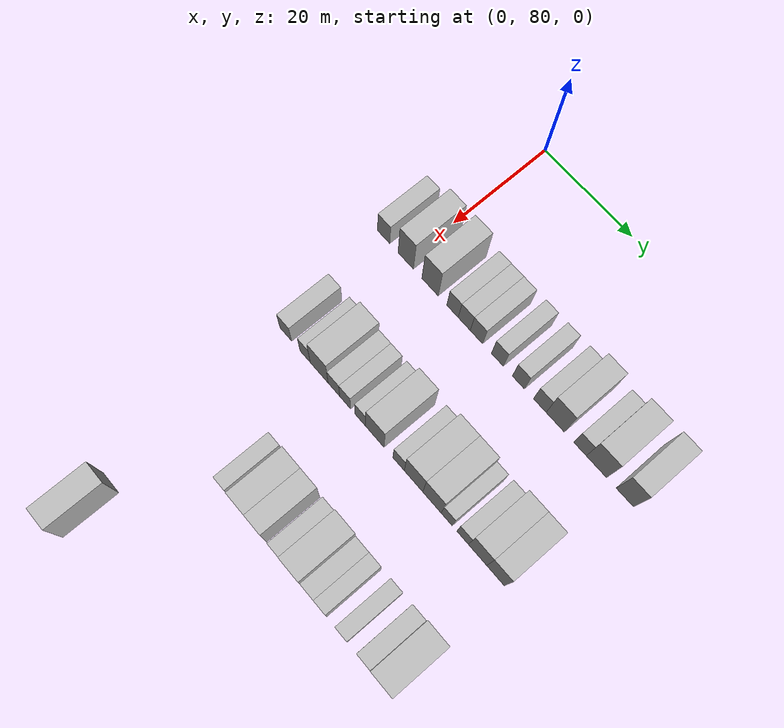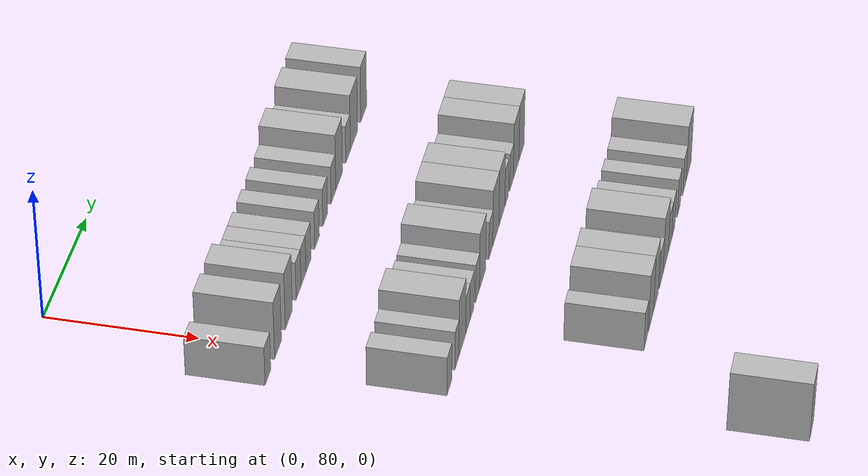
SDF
<sdf version="1.6">
 <world name="default">
  <model name="building_114">
   <static>1</static>
   <pose>25.0000 74.6300 0 0.000000 0.000000 0.000000</pose>
   <link name="link">
    <pose>0 0 3.00 0 0 0</pose>
    <collision name="collision"><geometry><box><size>10.0000 2.9692 6.0000</size></box></geometry></collision>
    <visual name="visual">
     <cast_shadows>0</cast_shadows>
     <geometry><box><size>10.0000 2.9692 6.0000</size></box></geometry>
     <material>
      <script>
       <uri>model://HANNAS_wall/materials/scripts</uri>
       <uri>model://HANNAS_wall/materials/textures</uri>
       <name>vrc/HANNAS_wall</name>
      </script>
     </material>
    </visual>
   </link>
  </model>
  <model name="building_115">
   <static>1</static>
   <pose>25.0000 79.9441 0 0.000000 0.000000 0.000000</pose>
   <link name="link">
    <pose>0 0 4.50 0 0 0</pose>
    <collision name="collision"><geometry><box><size>10.0000 3.6590 9.0000</size></box></geometry></collision>
    <visual name="visual">
     <cast_shadows>0</cast_shadows>
     <geometry><box><size>10.0000 3.6590 9.0000</size></box></geometry>
     <material>
      <script>
       <uri>model://HANNAS_wall/materials/scripts</uri>
       <uri>model://HANNAS_wall/materials/textures</uri>
       <name>vrc/HANNAS_wall</name>
      </script>
     </material>
    </visual>
   </link>
  </model>
  <model name="building_116">
   <static>1</static>
   <pose>25.0000 85.7078 0 0.000000 0.000000 0.000000</pose>
   <link name="link">
    <pose>0 0 4.50 0 0 0</pose>
    <collision name="collision"><geometry><box><size>10.0000 3.8683 9.0000</size></box></geometry></collision>
    <visual name="visual">
     <cast_shadows>0</cast_shadows>
     <geometry><box><size>10.0000 3.8683 9.0000</size></box></geometry>
     <material>
      <script>
       <uri>model://HANNAS_wall/materials/scripts</uri>
       <uri>model://HANNAS_wall/materials/textures</uri>
       <name>vrc/HANNAS_wall</name>
      </script>
     </material>
    </visual>
   </link>
  </model>
  <model name="building_117">
   <static>1</static>
   <pose>25.0000 90.9737 0 0.000000 0.000000 0.000000</pose>
   <link name="link">
    <pose>0 0 3.00 0 0 0</pose>
    <collision name="collision"><geometry><box><size>10.0000 2.6635 6.0000</size></box></geometry></collision>
    <visual name="visual">
     <cast_shadows>0</cast_shadows>
     <geometry><box><size>10.0000 2.6635 6.0000</size></box></geometry>
     <material>
      <script>
       <uri>model://HANNAS_wall/materials/scripts</uri>
       <uri>model://HANNAS_wall/materials/textures</uri>
       <name>vrc/HANNAS_wall</name>
      </script>
     </material>
    </visual>
   </link>
  </model>
  <model name="building_118">
   <static>1</static>
   <pose>25.0000 93.6869 0 0.000000 0.000000 0.000000</pose>
   <link name="link">
    <pose>0 0 3.00 0 0 0</pose>
    <collision name="collision"><geometry><box><size>10.0000 2.7629 6.0000</size></box></geometry></collision>
    <visual name="visual">
     <cast_shadows>0</cast_shadows>
     <geometry><box><size>10.0000 2.7629 6.0000</size></box></geometry>
     <material>
      <script>
       <uri>model://HANNAS_wall/materials/scripts</uri>
       <uri>model://HANNAS_wall/materials/textures</uri>
       <name>vrc/HANNAS_wall</name>
      </script>
     </material>
    </visual>
   </link>
  </model>
  <model name="building_119">
   <static>1</static>
   <pose>25.0000 96.4809 0 0.000000 0.000000 0.000000</pose>
   <link name="link">
    <pose>0 0 3.00 0 0 0</pose>
    <collision name="collision"><geometry><box><size>10.0000 2.8250 6.0000</size></box></geometry></collision>
    <visual name="visual">
     <cast_shadows>0</cast_shadows>
     <geometry><box><size>10.0000 2.8250 6.0000</size></box></geometry>
     <material>
      <script>
       <uri>model://HANNAS_wall/materials/scripts</uri>
       <uri>model://HANNAS_wall/materials/textures</uri>
       <name>vrc/HANNAS_wall</name>
      </script>
     </material>
    </visual>
   </link>
  </model>
  <model name="building_120">
   <static>1</static>
   <pose>25.0000 101.2464 0 0.000000 0.000000 0.000000</pose>
   <link name="link">
    <pose>0 0 3.00 0 0 0</pose>
    <collision name="collision"><geometry><box><size>10.0000 2.7061 6.0000</size></box></geometry></collision>
    <visual name="visual">
     <cast_shadows>0</cast_shadows>
     <geometry><box><size>10.0000 2.7061 6.0000</size></box></geometry>
     <material>
      <script>
       <uri>model://HANNAS_wall/materials/scripts</uri>
       <uri>model://HANNAS_wall/materials/textures</uri>
       <name>vrc/HANNAS_wall</name>
      </script>
     </material>
    </visual>
   </link>
  </model>
  <model name="building_121">
   <static>1</static>
   <pose>25.0000 105.9428 0 0.000000 0.000000 0.000000</pose>
   <link name="link">
    <pose>0 0 3.00 0 0 0</pose>
    <collision name="collision"><geometry><box><size>10.0000 2.6867 6.0000</size></box></geometry></collision>
    <visual name="visual">
     <cast_shadows>0</cast_shadows>
     <geometry><box><size>10.0000 2.6867 6.0000</size></box></geometry>
     <material>
      <script>
       <uri>model://HANNAS_wall/materials/scripts</uri>
       <uri>model://HANNAS_wall/materials/textures</uri>
       <name>vrc/HANNAS_wall</name>
      </script>
     </material>
    </visual>
   </link>
  </model>
  <model name="building_122">
   <static>1</static>
   <pose>25.0000 110.6799 0 0.000000 0.000000 0.000000</pose>
   <link name="link">
    <pose>0 0 3.00 0 0 0</pose>
    <collision name="collision"><geometry><box><size>10.0000 2.7877 6.0000</size></box></geometry></collision>
    <visual name="visual">
     <cast_shadows>0</cast_shadows>
     <geometry><box><size>10.0000 2.7877 6.0000</size></box></geometry>
     <material>
      <script>
       <uri>model://HANNAS_wall/materials/scripts</uri>
       <uri>model://HANNAS_wall/materials/textures</uri>
       <name>vrc/HANNAS_wall</name>
      </script>
     </material>
    </visual>
   </link>
  </model>
  <model name="building_123">
   <static>1</static>
   <pose>25.0000 114.0450 0 0.000000 0.000000 0.000000</pose>
   <link name="link">
    <pose>0 0 4.50 0 0 0</pose>
    <collision name="collision"><geometry><box><size>10.0000 3.9424 9.0000</size></box></geometry></collision>
    <visual name="visual">
     <cast_shadows>0</cast_shadows>
     <geometry><box><size>10.0000 3.9424 9.0000</size></box></geometry>
     <material>
      <script>
       <uri>model://HANNAS_wall/materials/scripts</uri>
       <uri>model://HANNAS_wall/materials/textures</uri>
       <name>vrc/HANNAS_wall</name>
      </script>
     </material>
    </visual>
   </link>
  </model>
  <model name="building_124">
   <static>1</static>
   <pose>25.0000 119.3702 0 0.000000 0.000000 0.000000</pose>
   <link name="link">
    <pose>0 0 3.00 0 0 0</pose>
    <collision name="collision"><geometry><box><size>10.0000 2.7081 6.0000</size></box></geometry></collision>
    <visual name="visual">
     <cast_shadows>0</cast_shadows>
     <geometry><box><size>10.0000 2.7081 6.0000</size></box></geometry>
     <material>
      <script>
       <uri>model://HANNAS_wall/materials/scripts</uri>
       <uri>model://HANNAS_wall/materials/textures</uri>
       <name>vrc/HANNAS_wall</name>
      </script>
     </material>
    </visual>
   </link>
  </model>
  <model name="building_125">
   <static>1</static>
   <pose>25.0000 122.8714 0 0.000000 0.000000 0.000000</pose>
   <link name="link">
    <pose>0 0 4.50 0 0 0</pose>
    <collision name="collision"><geometry><box><size>10.0000 4.2944 9.0000</size></box></geometry></collision>
    <visual name="visual">
     <cast_shadows>0</cast_shadows>
     <geometry><box><size>10.0000 4.2944 9.0000</size></box></geometry>
     <material>
      <script>
       <uri>model://HANNAS_wall/materials/scripts</uri>
       <uri>model://HANNAS_wall/materials/textures</uri>
       <name>vrc/HANNAS_wall</name>
      </script>
     </material>
    </visual>
   </link>
  </model>
  <model name="building_126">
   <static>1</static>
   <pose>25.0000 128.8364 0 0.000000 0.000000 0.000000</pose>
   <link name="link">
    <pose>0 0 4.50 0 0 0</pose>
    <collision name="collision"><geometry><box><size>10.0000 3.6356 9.0000</size></box></geometry></collision>
    <visual name="visual">
     <cast_shadows>0</cast_shadows>
     <geometry><box><size>10.0000 3.6356 9.0000</size></box></geometry>
     <material>
      <script>
       <uri>model://HANNAS_wall/materials/scripts</uri>
       <uri>model://HANNAS_wall/materials/textures</uri>
       <name>vrc/HANNAS_wall</name>
      </script>
     </material>
    </visual>
   </link>
  </model>
  <model name="building_303">
   <static>1</static>
   <pose>47.0000 77.2383 0 0.000000 0.000000 0.000000</pose>
   <link name="link">
    <pose>0 0 3.00 0 0 0</pose>
    <collision name="collision"><geometry><box><size>10.0000 2.8685 6.0000</size></box></geometry></collision>
    <visual name="visual">
     <cast_shadows>0</cast_shadows>
     <geometry><box><size>10.0000 2.8685 6.0000</size></box></geometry>
     <material>
      <script>
       <uri>model://HANNAS_wall/materials/scripts</uri>
       <uri>model://HANNAS_wall/materials/textures</uri>
       <name>vrc/HANNAS_wall</name>
      </script>
     </material>
    </visual>
   </link>
  </model>
  <model name="building_304">
   <static>1</static>
   <pose>47.0000 81.9047 0 0.000000 0.000000 0.000000</pose>
   <link name="link">
    <pose>0 0 3.00 0 0 0</pose>
    <collision name="collision"><geometry><box><size>10.0000 2.4643 6.0000</size></box></geometry></collision>
    <visual name="visual">
     <cast_shadows>0</cast_shadows>
     <geometry><box><size>10.0000 2.4643 6.0000</size></box></geometry>
     <material>
      <script>
       <uri>model://HANNAS_wall/materials/scripts</uri>
       <uri>model://HANNAS_wall/materials/textures</uri>
       <name>vrc/HANNAS_wall</name>
      </script>
     </material>
    </visual>
   </link>
  </model>
  <model name="building_305">
   <static>1</static>
   <pose>47.0000 85.2720 0 0.000000 0.000000 0.000000</pose>
   <link name="link">
    <pose>0 0 4.50 0 0 0</pose>
    <collision name="collision"><geometry><box><size>10.0000 4.2703 9.0000</size></box></geometry></collision>
    <visual name="visual">
     <cast_shadows>0</cast_shadows>
     <geometry><box><size>10.0000 4.2703 9.0000</size></box></geometry>
     <material>
      <script>
       <uri>model://HANNAS_wall/materials/scripts</uri>
       <uri>model://HANNAS_wall/materials/textures</uri>
       <name>vrc/HANNAS_wall</name>
      </script>
     </material>
    </visual>
   </link>
  </model>
  <model name="building_306">
   <static>1</static>
   <pose>47.0000 88.7662 0 0.000000 0.000000 0.000000</pose>
   <link name="link">
    <pose>0 0 3.00 0 0 0</pose>
    <collision name="collision"><geometry><box><size>10.0000 2.7181 6.0000</size></box></geometry></collision>
    <visual name="visual">
     <cast_shadows>0</cast_shadows>
     <geometry><box><size>10.0000 2.7181 6.0000</size></box></geometry>
     <material>
      <script>
       <uri>model://HANNAS_wall/materials/scripts</uri>
       <uri>model://HANNAS_wall/materials/textures</uri>
       <name>vrc/HANNAS_wall</name>
      </script>
     </material>
    </visual>
   </link>
  </model>
  <model name="building_307">
   <static>1</static>
   <pose>47.0000 91.4079 0 0.000000 0.000000 0.000000</pose>
   <link name="link">
    <pose>0 0 3.00 0 0 0</pose>
    <collision name="collision"><geometry><box><size>10.0000 2.5653 6.0000</size></box></geometry></collision>
    <visual name="visual">
     <cast_shadows>0</cast_shadows>
     <geometry><box><size>10.0000 2.5653 6.0000</size></box></geometry>
     <material>
      <script>
       <uri>model://HANNAS_wall/materials/scripts</uri>
       <uri>model://HANNAS_wall/materials/textures</uri>
       <name>vrc/HANNAS_wall</name>
      </script>
     </material>
    </visual>
   </link>
  </model>
  <model name="building_308">
   <static>1</static>
   <pose>47.0000 94.9453 0 0.000000 0.000000 0.000000</pose>
   <link name="link">
    <pose>0 0 3.00 0 0 0</pose>
    <collision name="collision"><geometry><box><size>10.0000 2.5094 6.0000</size></box></geometry></collision>
    <visual name="visual">
     <cast_shadows>0</cast_shadows>
     <geometry><box><size>10.0000 2.5094 6.0000</size></box></geometry>
     <material>
      <script>
       <uri>model://HANNAS_wall/materials/scripts</uri>
       <uri>model://HANNAS_wall/materials/textures</uri>
       <name>vrc/HANNAS_wall</name>
      </script>
     </material>
    </visual>
   </link>
  </model>
  <model name="building_309">
   <static>1</static>
   <pose>47.0000 98.2913 0 0.000000 0.000000 0.000000</pose>
   <link name="link">
    <pose>0 0 4.50 0 0 0</pose>
    <collision name="collision"><geometry><box><size>10.0000 4.1826 9.0000</size></box></geometry></collision>
    <visual name="visual">
     <cast_shadows>0</cast_shadows>
     <geometry><box><size>10.0000 4.1826 9.0000</size></box></geometry>
     <material>
      <script>
       <uri>model://HANNAS_wall/materials/scripts</uri>
       <uri>model://HANNAS_wall/materials/textures</uri>
       <name>vrc/HANNAS_wall</name>
      </script>
     </material>
    </visual>
   </link>
  </model>
  <model name="building_310">
   <static>1</static>
   <pose>47.0000 103.6734 0 0.000000 0.000000 0.000000</pose>
   <link name="link">
    <pose>0 0 3.00 0 0 0</pose>
    <collision name="collision"><geometry><box><size>10.0000 2.5818 6.0000</size></box></geometry></collision>
    <visual name="visual">
     <cast_shadows>0</cast_shadows>
     <geometry><box><size>10.0000 2.5818 6.0000</size></box></geometry>
     <material>
      <script>
       <uri>model://HANNAS_wall/materials/scripts</uri>
       <uri>model://HANNAS_wall/materials/textures</uri>
       <name>vrc/HANNAS_wall</name>
      </script>
     </material>
    </visual>
   </link>
  </model>
  <model name="building_311">
   <static>1</static>
   <pose>47.0000 107.0329 0 0.000000 0.000000 0.000000</pose>
   <link name="link">
    <pose>0 0 4.50 0 0 0</pose>
    <collision name="collision"><geometry><box><size>10.0000 4.1371 9.0000</size></box></geometry></collision>
    <visual name="visual">
     <cast_shadows>0</cast_shadows>
     <geometry><box><size>10.0000 4.1371 9.0000</size></box></geometry>
     <material>
      <script>
       <uri>model://HANNAS_wall/materials/scripts</uri>
       <uri>model://HANNAS_wall/materials/textures</uri>
       <name>vrc/HANNAS_wall</name>
      </script>
     </material>
    </visual>
   </link>
  </model>
  <model name="building_312">
   <static>1</static>
   <pose>47.0000 111.1319 0 0.000000 0.000000 0.000000</pose>
   <link name="link">
    <pose>0 0 4.50 0 0 0</pose>
    <collision name="collision"><geometry><box><size>10.0000 4.0609 9.0000</size></box></geometry></collision>
    <visual name="visual">
     <cast_shadows>0</cast_shadows>
     <geometry><box><size>10.0000 4.0609 9.0000</size></box></geometry>
     <material>
      <script>
       <uri>model://HANNAS_wall/materials/scripts</uri>
       <uri>model://HANNAS_wall/materials/textures</uri>
       <name>vrc/HANNAS_wall</name>
      </script>
     </material>
    </visual>
   </link>
  </model>
  <model name="building_313">
   <static>1</static>
   <pose>47.0000 114.3770 0 0.000000 0.000000 0.000000</pose>
   <link name="link">
    <pose>0 0 3.00 0 0 0</pose>
    <collision name="collision"><geometry><box><size>10.0000 2.4293 6.0000</size></box></geometry></collision>
    <visual name="visual">
     <cast_shadows>0</cast_shadows>
     <geometry><box><size>10.0000 2.4293 6.0000</size></box></geometry>
     <material>
      <script>
       <uri>model://HANNAS_wall/materials/scripts</uri>
       <uri>model://HANNAS_wall/materials/textures</uri>
       <name>vrc/HANNAS_wall</name>
      </script>
     </material>
    </visual>
   </link>
  </model>
  <model name="building_314">
   <static>1</static>
   <pose>47.0000 117.8444 0 0.000000 0.000000 0.000000</pose>
   <link name="link">
    <pose>0 0 3.00 0 0 0</pose>
    <collision name="collision"><geometry><box><size>10.0000 2.5055 6.0000</size></box></geometry></collision>
    <visual name="visual">
     <cast_shadows>0</cast_shadows>
     <geometry><box><size>10.0000 2.5055 6.0000</size></box></geometry>
     <material>
      <script>
       <uri>model://HANNAS_wall/materials/scripts</uri>
       <uri>model://HANNAS_wall/materials/textures</uri>
       <name>vrc/HANNAS_wall</name>
      </script>
     </material>
    </visual>
   </link>
  </model>
  <model name="building_315">
   <static>1</static>
   <pose>47.0000 121.0449 0 0.000000 0.000000 0.000000</pose>
   <link name="link">
    <pose>0 0 4.50 0 0 0</pose>
    <collision name="collision"><geometry><box><size>10.0000 3.8955 9.0000</size></box></geometry></collision>
    <visual name="visual">
     <cast_shadows>0</cast_shadows>
     <geometry><box><size>10.0000 3.8955 9.0000</size></box></geometry>
     <material>
      <script>
       <uri>model://HANNAS_wall/materials/scripts</uri>
       <uri>model://HANNAS_wall/materials/textures</uri>
       <name>vrc/HANNAS_wall</name>
      </script>
     </material>
    </visual>
   </link>
  </model>
  <model name="building_316">
   <static>1</static>
   <pose>47.0000 124.8665 0 0.000000 0.000000 0.000000</pose>
   <link name="link">
    <pose>0 0 4.50 0 0 0</pose>
    <collision name="collision"><geometry><box><size>10.0000 3.7479 9.0000</size></box></geometry></collision>
    <visual name="visual">
     <cast_shadows>0</cast_shadows>
     <geometry><box><size>10.0000 3.7479 9.0000</size></box></geometry>
     <material>
      <script>
       <uri>model://HANNAS_wall/materials/scripts</uri>
       <uri>model://HANNAS_wall/materials/textures</uri>
       <name>vrc/HANNAS_wall</name>
      </script>
     </material>
    </visual>
   </link>
  </model>
  <model name="building_490">
   <static>1</static>
   <pose>69.0000 90.1467 0 0.000000 0.000000 0.000000</pose>
   <link name="link">
    <pose>0 0 3.00 0 0 0</pose>
    <collision name="collision"><geometry><box><size>10.0000 2.5259 6.0000</size></box></geometry></collision>
    <visual name="visual">
     <cast_shadows>0</cast_shadows>
     <geometry><box><size>10.0000 2.5259 6.0000</size></box></geometry>
     <material>
      <script>
       <uri>model://HANNAS_wall/materials/scripts</uri>
       <uri>model://HANNAS_wall/materials/textures</uri>
       <name>vrc/HANNAS_wall</name>
      </script>
     </material>
    </visual>
   </link>
  </model>
  <model name="building_491">
   <static>1</static>
   <pose>69.0000 94.4067 0 0.000000 0.000000 0.000000</pose>
   <link name="link">
    <pose>0 0 4.50 0 0 0</pose>
    <collision name="collision"><geometry><box><size>10.0000 3.9941 9.0000</size></box></geometry></collision>
    <visual name="visual">
     <cast_shadows>0</cast_shadows>
     <geometry><box><size>10.0000 3.9941 9.0000</size></box></geometry>
     <material>
      <script>
       <uri>model://HANNAS_wall/materials/scripts</uri>
       <uri>model://HANNAS_wall/materials/textures</uri>
       <name>vrc/HANNAS_wall</name>
      </script>
     </material>
    </visual>
   </link>
  </model>
  <model name="building_492">
   <static>1</static>
   <pose>69.0000 98.2089 0 0.000000 0.000000 0.000000</pose>
   <link name="link">
    <pose>0 0 4.50 0 0 0</pose>
    <collision name="collision"><geometry><box><size>10.0000 3.6103 9.0000</size></box></geometry></collision>
    <visual name="visual">
     <cast_shadows>0</cast_shadows>
     <geometry><box><size>10.0000 3.6103 9.0000</size></box></geometry>
     <material>
      <script>
       <uri>model://HANNAS_wall/materials/scripts</uri>
       <uri>model://HANNAS_wall/materials/textures</uri>
       <name>vrc/HANNAS_wall</name>
      </script>
     </material>
    </visual>
   </link>
  </model>
  <model name="building_493">
   <static>1</static>
   <pose>69.0000 102.4387 0 0.000000 0.000000 0.000000</pose>
   <link name="link">
    <pose>0 0 3.00 0 0 0</pose>
    <collision name="collision"><geometry><box><size>10.0000 2.8492 6.0000</size></box></geometry></collision>
    <visual name="visual">
     <cast_shadows>0</cast_shadows>
     <geometry><box><size>10.0000 2.8492 6.0000</size></box></geometry>
     <material>
      <script>
       <uri>model://HANNAS_wall/materials/scripts</uri>
       <uri>model://HANNAS_wall/materials/textures</uri>
       <name>vrc/HANNAS_wall</name>
      </script>
     </material>
    </visual>
   </link>
  </model>
  <model name="building_494">
   <static>1</static>
   <pose>69.0000 106.0229 0 0.000000 0.000000 0.000000</pose>
   <link name="link">
    <pose>0 0 4.50 0 0 0</pose>
    <collision name="collision"><geometry><box><size>10.0000 4.3193 9.0000</size></box></geometry></collision>
    <visual name="visual">
     <cast_shadows>0</cast_shadows>
     <geometry><box><size>10.0000 4.3193 9.0000</size></box></geometry>
     <material>
      <script>
       <uri>model://HANNAS_wall/materials/scripts</uri>
       <uri>model://HANNAS_wall/materials/textures</uri>
       <name>vrc/HANNAS_wall</name>
      </script>
     </material>
    </visual>
   </link>
  </model>
  <model name="building_495">
   <static>1</static>
   <pose>69.0000 109.6367 0 0.000000 0.000000 0.000000</pose>
   <link name="link">
    <pose>0 0 3.00 0 0 0</pose>
    <collision name="collision"><geometry><box><size>10.0000 2.9082 6.0000</size></box></geometry></collision>
    <visual name="visual">
     <cast_shadows>0</cast_shadows>
     <geometry><box><size>10.0000 2.9082 6.0000</size></box></geometry>
     <material>
      <script>
       <uri>model://HANNAS_wall/materials/scripts</uri>
       <uri>model://HANNAS_wall/materials/textures</uri>
       <name>vrc/HANNAS_wall</name>
      </script>
     </material>
    </visual>
   </link>
  </model>
  <model name="building_496">
   <static>1</static>
   <pose>69.0000 112.3800 0 0.000000 0.000000 0.000000</pose>
   <link name="link">
    <pose>0 0 3.00 0 0 0</pose>
    <collision name="collision"><geometry><box><size>10.0000 2.5785 6.0000</size></box></geometry></collision>
    <visual name="visual">
     <cast_shadows>0</cast_shadows>
     <geometry><box><size>10.0000 2.5785 6.0000</size></box></geometry>
     <material>
      <script>
       <uri>model://HANNAS_wall/materials/scripts</uri>
       <uri>model://HANNAS_wall/materials/textures</uri>
       <name>vrc/HANNAS_wall</name>
      </script>
     </material>
    </visual>
   </link>
  </model>
  <model name="building_497">
   <static>1</static>
   <pose>69.0000 116.9374 0 0.000000 0.000000 0.000000</pose>
   <link name="link">
    <pose>0 0 3.00 0 0 0</pose>
    <collision name="collision"><geometry><box><size>10.0000 2.5363 6.0000</size></box></geometry></collision>
    <visual name="visual">
     <cast_shadows>0</cast_shadows>
     <geometry><box><size>10.0000 2.5363 6.0000</size></box></geometry>
     <material>
      <script>
       <uri>model://HANNAS_wall/materials/scripts</uri>
       <uri>model://HANNAS_wall/materials/textures</uri>
       <name>vrc/HANNAS_wall</name>
      </script>
     </material>
    </visual>
   </link>
  </model>
  <model name="building_498">
   <static>1</static>
   <pose>69.0000 121.6318 0 0.000000 0.000000 0.000000</pose>
   <link name="link">
    <pose>0 0 3.00 0 0 0</pose>
    <collision name="collision"><geometry><box><size>10.0000 2.8524 6.0000</size></box></geometry></collision>
    <visual name="visual">
     <cast_shadows>0</cast_shadows>
     <geometry><box><size>10.0000 2.8524 6.0000</size></box></geometry>
     <material>
      <script>
       <uri>model://HANNAS_wall/materials/scripts</uri>
       <uri>model://HANNAS_wall/materials/textures</uri>
       <name>vrc/HANNAS_wall</name>
      </script>
     </material>
    </visual>
   </link>
  </model>
  <model name="building_499">
   <static>1</static>
   <pose>69.0000 125.2840 0 0.000000 0.000000 0.000000</pose>
   <link name="link">
    <pose>0 0 4.50 0 0 0</pose>
    <collision name="collision"><geometry><box><size>10.0000 4.4520 9.0000</size></box></geometry></collision>
    <visual name="visual">
     <cast_shadows>0</cast_shadows>
     <geometry><box><size>10.0000 4.4520 9.0000</size></box></geometry>
     <material>
      <script>
       <uri>model://HANNAS_wall/materials/scripts</uri>
       <uri>model://HANNAS_wall/materials/textures</uri>
       <name>vrc/HANNAS_wall</name>
      </script>
     </material>
    </visual>
   </link>
  </model>
  <model name="building_686">
   <static>1</static>
   <pose>91.0000 78.4795 0 0.000000 0.000000 0.000000</pose>
   <link name="link">
    <pose>0 0 4.50 0 0 0</pose>
    <collision name="collision"><geometry><box><size>10.0000 3.8818 9.0000</size></box></geometry></collision>
    <visual name="visual">
     <cast_shadows>0</cast_shadows>
     <geometry><box><size>10.0000 3.8818 9.0000</size></box></geometry>
     <material>
      <script>
       <uri>model://HANNAS_wall/materials/scripts</uri>
       <uri>model://HANNAS_wall/materials/textures</uri>
       <name>vrc/HANNAS_wall</name>
      </script>
     </material>
    </visual>
   </link>
  </model>
 </world>
</sdf>
